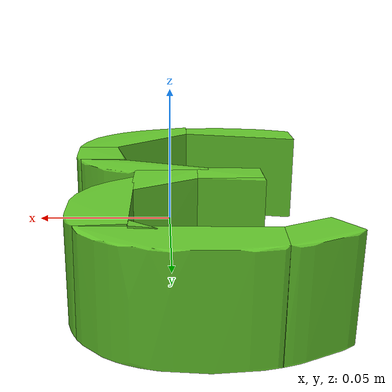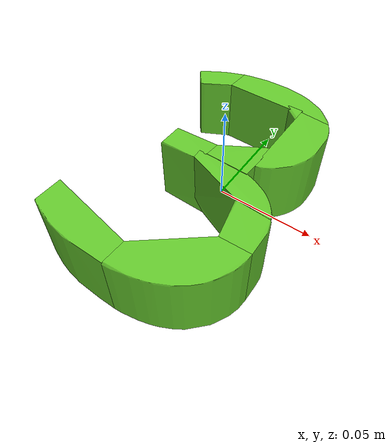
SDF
<?xml version='1.0' encoding='UTF-8'?>
<!-- This SDF was autogenerated by obj_to_drake_sdf.py -->
<sdf version="1.7">
  <model name="3_centered">
    <link name="3_centered">
      <inertial>
        <pose>0 0 0 0 0 0</pose>
        <mass>0.05</mass>
        <inertia>
          <ixx>0.00013229596</ixx>
          <iyy>4.0066506e-05</iyy>
          <izz>0.00015926301</izz>
          <ixy>-1.0687022e-06</ixy>
          <ixz>1.0064022e-10</ixz>
          <iyz>-3.8833796e-10</iyz>
        </inertia>
      </inertial>
      <visual name="convex_0">
        <pose>0 0 0 0 0 0</pose>
        <geometry>
          <mesh>
            <uri>3_centered_convex_0.obj</uri>
          </mesh>
        </geometry>
        <material>
          <diffuse>0.39215686274509803 0.7843137254901961 0.17254901960784313 1</diffuse>
        </material>
      </visual>
      <collision name="convex_0_volume">
        <pose>0 0 0 0 0 0</pose>
        <geometry>
          <mesh>
            <uri>3_centered_convex_0.obj</uri>
          </mesh>
        </geometry>
        <drake:proximity_properties xmlns:drake="uri:drake">
          <drake:compliant_hydroelastic/>
          <drake:hydroelastic_modulus> 3.0e7 </drake:hydroelastic_modulus>
          <drake:mesh_resolution_hint> 0.02 </drake:mesh_resolution_hint>
          <drake:hunt_crossley_dissipation>10</drake:hunt_crossley_dissipation>
          <drake:mu_dynamic>0.3</drake:mu_dynamic>
        </drake:proximity_properties>
      </collision>
      <visual name="convex_1">
        <pose>0 0 0 0 0 0</pose>
        <geometry>
          <mesh>
            <uri>3_centered_convex_1.obj</uri>
          </mesh>
        </geometry>
        <material>
          <diffuse>0.39215686274509803 0.7843137254901961 0.17254901960784313 1</diffuse>
        </material>
      </visual>
      <collision name="convex_1_volume">
        <pose>0 0 0 0 0 0</pose>
        <geometry>
          <mesh>
            <uri>3_centered_convex_1.obj</uri>
          </mesh>
        </geometry>
        <drake:proximity_properties xmlns:drake="uri:drake">
          <drake:compliant_hydroelastic/>
          <drake:hydroelastic_modulus> 3.0e7 </drake:hydroelastic_modulus>
          <drake:mesh_resolution_hint> 0.02 </drake:mesh_resolution_hint>
          <drake:hunt_crossley_dissipation>10</drake:hunt_crossley_dissipation>
          <drake:mu_dynamic>0.3</drake:mu_dynamic>
        </drake:proximity_properties>
      </collision>
      <visual name="convex_2">
        <pose>0 0 0 0 0 0</pose>
        <geometry>
          <mesh>
            <uri>3_centered_convex_2.obj</uri>
          </mesh>
        </geometry>
        <material>
          <diffuse>0.39215686274509803 0.7843137254901961 0.17254901960784313 1</diffuse>
        </material>
      </visual>
      <collision name="convex_2_volume">
        <pose>0 0 0 0 0 0</pose>
        <geometry>
          <mesh>
            <uri>3_centered_convex_2.obj</uri>
          </mesh>
        </geometry>
        <drake:proximity_properties xmlns:drake="uri:drake">
          <drake:compliant_hydroelastic/>
          <drake:hydroelastic_modulus> 3.0e7 </drake:hydroelastic_modulus>
          <drake:mesh_resolution_hint> 0.02 </drake:mesh_resolution_hint>
          <drake:hunt_crossley_dissipation>10</drake:hunt_crossley_dissipation>
          <drake:mu_dynamic>0.3</drake:mu_dynamic>
        </drake:proximity_properties>
      </collision>
      <visual name="convex_3">
        <pose>0 0 0 0 0 0</pose>
        <geometry>
          <mesh>
            <uri>3_centered_convex_3.obj</uri>
          </mesh>
        </geometry>
        <material>
          <diffuse>0.39215686274509803 0.7843137254901961 0.17254901960784313 1</diffuse>
        </material>
      </visual>
      <collision name="convex_3_volume">
        <pose>0 0 0 0 0 0</pose>
        <geometry>
          <mesh>
            <uri>3_centered_convex_3.obj</uri>
          </mesh>
        </geometry>
        <drake:proximity_properties xmlns:drake="uri:drake">
          <drake:compliant_hydroelastic/>
          <drake:hydroelastic_modulus> 3.0e7 </drake:hydroelastic_modulus>
          <drake:mesh_resolution_hint> 0.02 </drake:mesh_resolution_hint>
          <drake:hunt_crossley_dissipation>10</drake:hunt_crossley_dissipation>
          <drake:mu_dynamic>0.3</drake:mu_dynamic>
        </drake:proximity_properties>
      </collision>
      <visual name="convex_4">
        <pose>0 0 0 0 0 0</pose>
        <geometry>
          <mesh>
            <uri>3_centered_convex_4.obj</uri>
          </mesh>
        </geometry>
        <material>
          <diffuse>0.39215686274509803 0.7843137254901961 0.17254901960784313 1</diffuse>
        </material>
      </visual>
      <collision name="convex_4_volume">
        <pose>0 0 0 0 0 0</pose>
        <geometry>
          <mesh>
            <uri>3_centered_convex_4.obj</uri>
          </mesh>
        </geometry>
        <drake:proximity_properties xmlns:drake="uri:drake">
          <drake:compliant_hydroelastic/>
          <drake:hydroelastic_modulus> 3.0e7 </drake:hydroelastic_modulus>
          <drake:mesh_resolution_hint> 0.02 </drake:mesh_resolution_hint>
          <drake:hunt_crossley_dissipation>10</drake:hunt_crossley_dissipation>
          <drake:mu_dynamic>0.3</drake:mu_dynamic>
        </drake:proximity_properties>
      </collision>
      <visual name="convex_5">
        <pose>0 0 0 0 0 0</pose>
        <geometry>
          <mesh>
            <uri>3_centered_convex_5.obj</uri>
          </mesh>
        </geometry>
        <material>
          <diffuse>0.39215686274509803 0.7843137254901961 0.17254901960784313 1</diffuse>
        </material>
      </visual>
      <collision name="convex_5_volume">
        <pose>0 0 0 0 0 0</pose>
        <geometry>
          <mesh>
            <uri>3_centered_convex_5.obj</uri>
          </mesh>
        </geometry>
        <drake:proximity_properties xmlns:drake="uri:drake">
          <drake:compliant_hydroelastic/>
          <drake:hydroelastic_modulus> 3.0e7 </drake:hydroelastic_modulus>
          <drake:mesh_resolution_hint> 0.02 </drake:mesh_resolution_hint>
          <drake:hunt_crossley_dissipation>10</drake:hunt_crossley_dissipation>
          <drake:mu_dynamic>0.3</drake:mu_dynamic>
        </drake:proximity_properties>
      </collision>
      <visual name="convex_6">
        <pose>0 0 0 0 0 0</pose>
        <geometry>
          <mesh>
            <uri>3_centered_convex_6.obj</uri>
          </mesh>
        </geometry>
        <material>
          <diffuse>0.39215686274509803 0.7843137254901961 0.17254901960784313 1</diffuse>
        </material>
      </visual>
      <collision name="convex_6_volume">
        <pose>0 0 0 0 0 0</pose>
        <geometry>
          <mesh>
            <uri>3_centered_convex_6.obj</uri>
          </mesh>
        </geometry>
        <drake:proximity_properties xmlns:drake="uri:drake">
          <drake:compliant_hydroelastic/>
          <drake:hydroelastic_modulus> 3.0e7 </drake:hydroelastic_modulus>
          <drake:mesh_resolution_hint> 0.02 </drake:mesh_resolution_hint>
          <drake:hunt_crossley_dissipation>10</drake:hunt_crossley_dissipation>
          <drake:mu_dynamic>0.3</drake:mu_dynamic>
        </drake:proximity_properties>
      </collision>
      <visual name="convex_7">
        <pose>0 0 0 0 0 0</pose>
        <geometry>
          <mesh>
            <uri>3_centered_convex_7.obj</uri>
          </mesh>
        </geometry>
        <material>
          <diffuse>0.39215686274509803 0.7843137254901961 0.17254901960784313 1</diffuse>
        </material>
      </visual>
      <collision name="convex_7_volume">
        <pose>0 0 0 0 0 0</pose>
        <geometry>
          <mesh>
            <uri>3_centered_convex_7.obj</uri>
          </mesh>
        </geometry>
        <drake:proximity_properties xmlns:drake="uri:drake">
          <drake:compliant_hydroelastic/>
          <drake:hydroelastic_modulus> 3.0e7 </drake:hydroelastic_modulus>
          <drake:mesh_resolution_hint> 0.02 </drake:mesh_resolution_hint>
          <drake:hunt_crossley_dissipation>10</drake:hunt_crossley_dissipation>
          <drake:mu_dynamic>0.3</drake:mu_dynamic>
        </drake:proximity_properties>
      </collision>
      <visual name="convex_8">
        <pose>0 0 0 0 0 0</pose>
        <geometry>
          <mesh>
            <uri>3_centered_convex_8.obj</uri>
          </mesh>
        </geometry>
        <material>
          <diffuse>0.39215686274509803 0.7843137254901961 0.17254901960784313 1</diffuse>
        </material>
      </visual>
      <collision name="convex_8_volume">
        <pose>0 0 0 0 0 0</pose>
        <geometry>
          <mesh>
            <uri>3_centered_convex_8.obj</uri>
          </mesh>
        </geometry>
        <drake:proximity_properties xmlns:drake="uri:drake">
          <drake:compliant_hydroelastic/>
          <drake:hydroelastic_modulus> 3.0e7 </drake:hydroelastic_modulus>
          <drake:mesh_resolution_hint> 0.02 </drake:mesh_resolution_hint>
          <drake:hunt_crossley_dissipation>10</drake:hunt_crossley_dissipation>
          <drake:mu_dynamic>0.3</drake:mu_dynamic>
        </drake:proximity_properties>
      </collision>
      <visual name="convex_9">
        <pose>0 0 0 0 0 0</pose>
        <geometry>
          <mesh>
            <uri>3_centered_convex_9.obj</uri>
          </mesh>
        </geometry>
        <material>
          <diffuse>0.39215686274509803 0.7843137254901961 0.17254901960784313 1</diffuse>
        </material>
      </visual>
      <collision name="convex_9_volume">
        <pose>0 0 0 0 0 0</pose>
        <geometry>
          <mesh>
            <uri>3_centered_convex_9.obj</uri>
          </mesh>
        </geometry>
        <drake:proximity_properties xmlns:drake="uri:drake">
          <drake:compliant_hydroelastic/>
          <drake:hydroelastic_modulus> 3.0e7 </drake:hydroelastic_modulus>
          <drake:mesh_resolution_hint> 0.02 </drake:mesh_resolution_hint>
          <drake:hunt_crossley_dissipation>10</drake:hunt_crossley_dissipation>
          <drake:mu_dynamic>0.3</drake:mu_dynamic>
        </drake:proximity_properties>
      </collision>
    </link>
  </model>
</sdf>
